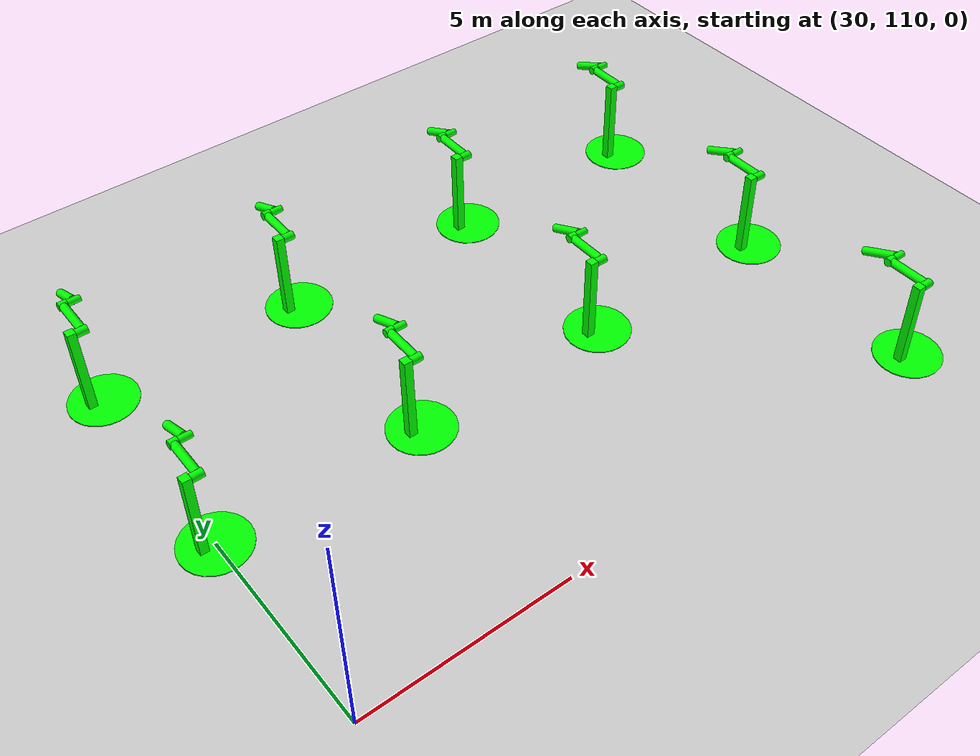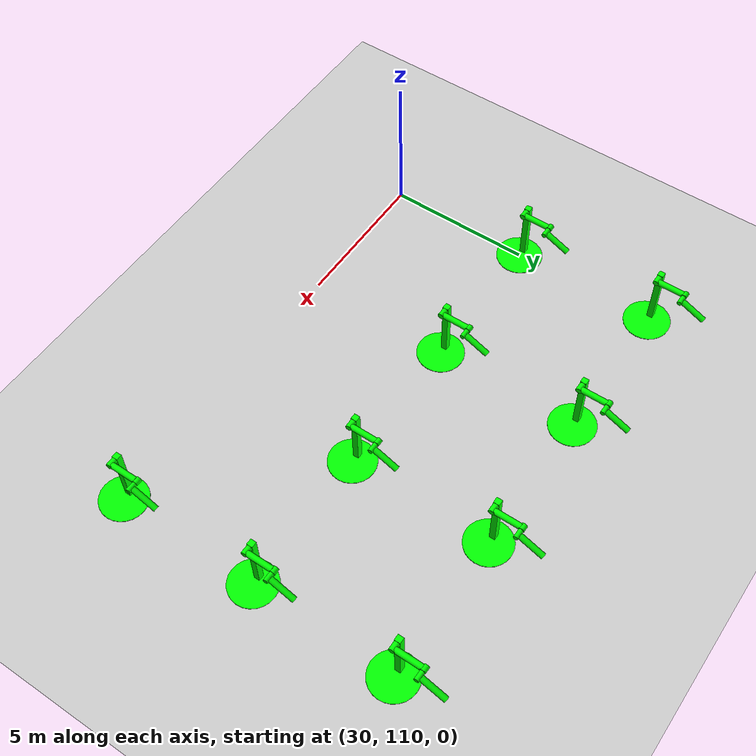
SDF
<sdf version="1.6">
 <world name="double_pendulums">
  <model name="ground_plane">
   <static>true</static>
   <link name="link">
    <collision name="collision">
     <geometry><plane><normal>0 0 1</normal><size>100 100</size></plane></geometry>
    </collision>
    <visual name="visual">
     <geometry><plane><normal>0 0 1</normal><size>100 100</size></plane></geometry>
     <material>
      <ambient>0.8 0.8 0.8 1</ambient>
      <diffuse>0.8 0.8 0.8 1</diffuse>
      <specular>0.8 0.8 0.8 1</specular>
     </material>
    </visual>
   </link>
  </model>
  <model name="dbl_pendulum_569">
   <pose>45 110 0 0 0 0</pose>
   <link name="base">
    <inertial><mass>100</mass></inertial>
    <visual name="vis_plate_on_ground">
     <pose>0 0 0.01 0 0 0</pose>
     <geometry><cylinder><radius>0.8</radius><length>0.02</length></cylinder></geometry>
     <material><ambient>0 1 0 1</ambient><diffuse>0 1 0 1</diffuse><specular>0 1 0 1</specular></material>
    </visual>
    <visual name="vis_pole">
     <pose>-0.275 0 1.1 0 0 0</pose>
     <geometry><box><size>0.2 0.2 2.2</size></box></geometry>
     <material><ambient>0 1 0 1</ambient><diffuse>0 1 0 1</diffuse><specular>0 1 0 1</specular></material>
    </visual>
    <collision name="col_plate_on_ground">
     <pose>0 0 0.01 0 0 0</pose>
     <geometry><cylinder><radius>0.8</radius><length>0.02</length></cylinder></geometry>
    </collision>
    <collision name="col_pole">
     <pose>-0.275 0 1.1 0 0 0</pose>
     <geometry><box><size>0.2 0.2 2.2</size></box></geometry>
    </collision>
   </link>
   <link name="upper_link">
    <pose>0 0 2.1 -1.5708 0 0</pose>
    <inertial><pose>0 0 0.5 0 0 0</pose></inertial>
    <visual name="vis_upper_joint">
     <pose>-0.05 0 0 0 1.5708 0</pose>
     <geometry><cylinder><radius>0.1</radius><length>0.3</length></cylinder></geometry>
     <material><ambient>0 1 0 1</ambient><diffuse>0 1 0 1</diffuse><specular>0 1 0 1</specular></material>
    </visual>
    <visual name="vis_lower_joint">
     <pose>0 0 1.0 0 1.5708 0</pose>
     <geometry><cylinder><radius>0.1</radius><length>0.2</length></cylinder></geometry>
     <material><ambient>0 1 0 1</ambient><diffuse>0 1 0 1</diffuse><specular>0 1 0 1</specular></material>
    </visual>
    <visual name="vis_cylinder">
     <pose>0 0 0.5 0 0 0</pose>
     <geometry><cylinder><radius>0.1</radius><length>0.9</length></cylinder></geometry>
     <material><ambient>0 1 0 1</ambient><diffuse>0 1 0 1</diffuse><specular>0 1 0 1</specular></material>
    </visual>
    <collision name="col_upper_joint">
     <pose>-0.05 0 0 0 1.5708 0</pose>
     <geometry><cylinder><radius>0.1</radius><length>0.3</length></cylinder></geometry>
    </collision>
    <collision name="col_lower_joint">
     <pose>0 0 1.0 0 1.5708 0</pose>
     <geometry><cylinder><radius>0.1</radius><length>0.2</length></cylinder></geometry>
    </collision>
    <collision name="col_cylinder">
     <pose>0 0 0.5 0 0 0</pose>
     <geometry><cylinder><radius>0.1</radius><length>0.9</length></cylinder></geometry>
    </collision>
   </link>
   <link name="lower_link">
    <pose>0.25 1.0 2.1 -2 0 0</pose>
    <inertial><pose>0 0 0.5 0 0 0</pose></inertial>
    <visual name="vis_lower_joint">
     <pose>0 0 0 0 1.5708 0</pose>
     <geometry><cylinder><radius>0.08</radius><length>0.3</length></cylinder></geometry>
     <material><ambient>0 1 0 1</ambient><diffuse>0 1 0 1</diffuse><specular>0 1 0 1</specular></material>
    </visual>
    <visual name="vis_cylinder">
     <pose>0 0 0.5 0 0 0</pose>
     <geometry><cylinder><radius>0.1</radius><length>0.9</length></cylinder></geometry>
     <material><ambient>0 1 0 1</ambient><diffuse>0 1 0 1</diffuse><specular>0 1 0 1</specular></material>
    </visual>
    <collision name="col_lower_joint">
     <pose>0 0 0 0 1.5708 0</pose>
     <geometry><cylinder><radius>0.08</radius><length>0.3</length></cylinder></geometry>
    </collision>
    <collision name="col_cylinder">
     <pose>0 0 0.5 0 0 0</pose>
     <geometry><cylinder><radius>0.1</radius><length>0.9</length></cylinder></geometry>
    </collision>
   </link>
   <joint name="upper_joint" type="revolute">
    <parent>base</parent>
    <child>upper_link</child>
    <axis><xyz>1.0 0 0</xyz></axis>
   </joint>
   <joint name="lower_joint" type="revolute">
    <parent>upper_link</parent>
    <child>lower_link</child>
    <axis><xyz>1.0 0 0</xyz></axis>
   </joint>
  </model>
  <model name="dbl_pendulum_591">
   <pose>30 115 0 0 0 0</pose>
   <link name="base">
    <inertial><mass>100</mass></inertial>
    <visual name="vis_plate_on_ground">
     <pose>0 0 0.01 0 0 0</pose>
     <geometry><cylinder><radius>0.8</radius><length>0.02</length></cylinder></geometry>
     <material><ambient>0 1 0 1</ambient><diffuse>0 1 0 1</diffuse><specular>0 1 0 1</specular></material>
    </visual>
    <visual name="vis_pole">
     <pose>-0.275 0 1.1 0 0 0</pose>
     <geometry><box><size>0.2 0.2 2.2</size></box></geometry>
     <material><ambient>0 1 0 1</ambient><diffuse>0 1 0 1</diffuse><specular>0 1 0 1</specular></material>
    </visual>
    <collision name="col_plate_on_ground">
     <pose>0 0 0.01 0 0 0</pose>
     <geometry><cylinder><radius>0.8</radius><length>0.02</length></cylinder></geometry>
    </collision>
    <collision name="col_pole">
     <pose>-0.275 0 1.1 0 0 0</pose>
     <geometry><box><size>0.2 0.2 2.2</size></box></geometry>
    </collision>
   </link>
   <link name="upper_link">
    <pose>0 0 2.1 -1.5708 0 0</pose>
    <inertial><pose>0 0 0.5 0 0 0</pose></inertial>
    <visual name="vis_upper_joint">
     <pose>-0.05 0 0 0 1.5708 0</pose>
     <geometry><cylinder><radius>0.1</radius><length>0.3</length></cylinder></geometry>
     <material><ambient>0 1 0 1</ambient><diffuse>0 1 0 1</diffuse><specular>0 1 0 1</specular></material>
    </visual>
    <visual name="vis_lower_joint">
     <pose>0 0 1.0 0 1.5708 0</pose>
     <geometry><cylinder><radius>0.1</radius><length>0.2</length></cylinder></geometry>
     <material><ambient>0 1 0 1</ambient><diffuse>0 1 0 1</diffuse><specular>0 1 0 1</specular></material>
    </visual>
    <visual name="vis_cylinder">
     <pose>0 0 0.5 0 0 0</pose>
     <geometry><cylinder><radius>0.1</radius><length>0.9</length></cylinder></geometry>
     <material><ambient>0 1 0 1</ambient><diffuse>0 1 0 1</diffuse><specular>0 1 0 1</specular></material>
    </visual>
    <collision name="col_upper_joint">
     <pose>-0.05 0 0 0 1.5708 0</pose>
     <geometry><cylinder><radius>0.1</radius><length>0.3</length></cylinder></geometry>
    </collision>
    <collision name="col_lower_joint">
     <pose>0 0 1.0 0 1.5708 0</pose>
     <geometry><cylinder><radius>0.1</radius><length>0.2</length></cylinder></geometry>
    </collision>
    <collision name="col_cylinder">
     <pose>0 0 0.5 0 0 0</pose>
     <geometry><cylinder><radius>0.1</radius><length>0.9</length></cylinder></geometry>
    </collision>
   </link>
   <link name="lower_link">
    <pose>0.25 1.0 2.1 -2 0 0</pose>
    <inertial><pose>0 0 0.5 0 0 0</pose></inertial>
    <visual name="vis_lower_joint">
     <pose>0 0 0 0 1.5708 0</pose>
     <geometry><cylinder><radius>0.08</radius><length>0.3</length></cylinder></geometry>
     <material><ambient>0 1 0 1</ambient><diffuse>0 1 0 1</diffuse><specular>0 1 0 1</specular></material>
    </visual>
    <visual name="vis_cylinder">
     <pose>0 0 0.5 0 0 0</pose>
     <geometry><cylinder><radius>0.1</radius><length>0.9</length></cylinder></geometry>
     <material><ambient>0 1 0 1</ambient><diffuse>0 1 0 1</diffuse><specular>0 1 0 1</specular></material>
    </visual>
    <collision name="col_lower_joint">
     <pose>0 0 0 0 1.5708 0</pose>
     <geometry><cylinder><radius>0.08</radius><length>0.3</length></cylinder></geometry>
    </collision>
    <collision name="col_cylinder">
     <pose>0 0 0.5 0 0 0</pose>
     <geometry><cylinder><radius>0.1</radius><length>0.9</length></cylinder></geometry>
    </collision>
   </link>
   <joint name="upper_joint" type="revolute">
    <parent>base</parent>
    <child>upper_link</child>
    <axis><xyz>1.0 0 0</xyz></axis>
   </joint>
   <joint name="lower_joint" type="revolute">
    <parent>upper_link</parent>
    <child>lower_link</child>
    <axis><xyz>1.0 0 0</xyz></axis>
   </joint>
  </model>
  <model name="dbl_pendulum_592">
   <pose>35 115 0 0 0 0</pose>
   <link name="base">
    <inertial><mass>100</mass></inertial>
    <visual name="vis_plate_on_ground">
     <pose>0 0 0.01 0 0 0</pose>
     <geometry><cylinder><radius>0.8</radius><length>0.02</length></cylinder></geometry>
     <material><ambient>0 1 0 1</ambient><diffuse>0 1 0 1</diffuse><specular>0 1 0 1</specular></material>
    </visual>
    <visual name="vis_pole">
     <pose>-0.275 0 1.1 0 0 0</pose>
     <geometry><box><size>0.2 0.2 2.2</size></box></geometry>
     <material><ambient>0 1 0 1</ambient><diffuse>0 1 0 1</diffuse><specular>0 1 0 1</specular></material>
    </visual>
    <collision name="col_plate_on_ground">
     <pose>0 0 0.01 0 0 0</pose>
     <geometry><cylinder><radius>0.8</radius><length>0.02</length></cylinder></geometry>
    </collision>
    <collision name="col_pole">
     <pose>-0.275 0 1.1 0 0 0</pose>
     <geometry><box><size>0.2 0.2 2.2</size></box></geometry>
    </collision>
   </link>
   <link name="upper_link">
    <pose>0 0 2.1 -1.5708 0 0</pose>
    <inertial><pose>0 0 0.5 0 0 0</pose></inertial>
    <visual name="vis_upper_joint">
     <pose>-0.05 0 0 0 1.5708 0</pose>
     <geometry><cylinder><radius>0.1</radius><length>0.3</length></cylinder></geometry>
     <material><ambient>0 1 0 1</ambient><diffuse>0 1 0 1</diffuse><specular>0 1 0 1</specular></material>
    </visual>
    <visual name="vis_lower_joint">
     <pose>0 0 1.0 0 1.5708 0</pose>
     <geometry><cylinder><radius>0.1</radius><length>0.2</length></cylinder></geometry>
     <material><ambient>0 1 0 1</ambient><diffuse>0 1 0 1</diffuse><specular>0 1 0 1</specular></material>
    </visual>
    <visual name="vis_cylinder">
     <pose>0 0 0.5 0 0 0</pose>
     <geometry><cylinder><radius>0.1</radius><length>0.9</length></cylinder></geometry>
     <material><ambient>0 1 0 1</ambient><diffuse>0 1 0 1</diffuse><specular>0 1 0 1</specular></material>
    </visual>
    <collision name="col_upper_joint">
     <pose>-0.05 0 0 0 1.5708 0</pose>
     <geometry><cylinder><radius>0.1</radius><length>0.3</length></cylinder></geometry>
    </collision>
    <collision name="col_lower_joint">
     <pose>0 0 1.0 0 1.5708 0</pose>
     <geometry><cylinder><radius>0.1</radius><length>0.2</length></cylinder></geometry>
    </collision>
    <collision name="col_cylinder">
     <pose>0 0 0.5 0 0 0</pose>
     <geometry><cylinder><radius>0.1</radius><length>0.9</length></cylinder></geometry>
    </collision>
   </link>
   <link name="lower_link">
    <pose>0.25 1.0 2.1 -2 0 0</pose>
    <inertial><pose>0 0 0.5 0 0 0</pose></inertial>
    <visual name="vis_lower_joint">
     <pose>0 0 0 0 1.5708 0</pose>
     <geometry><cylinder><radius>0.08</radius><length>0.3</length></cylinder></geometry>
     <material><ambient>0 1 0 1</ambient><diffuse>0 1 0 1</diffuse><specular>0 1 0 1</specular></material>
    </visual>
    <visual name="vis_cylinder">
     <pose>0 0 0.5 0 0 0</pose>
     <geometry><cylinder><radius>0.1</radius><length>0.9</length></cylinder></geometry>
     <material><ambient>0 1 0 1</ambient><diffuse>0 1 0 1</diffuse><specular>0 1 0 1</specular></material>
    </visual>
    <collision name="col_lower_joint">
     <pose>0 0 0 0 1.5708 0</pose>
     <geometry><cylinder><radius>0.08</radius><length>0.3</length></cylinder></geometry>
    </collision>
    <collision name="col_cylinder">
     <pose>0 0 0.5 0 0 0</pose>
     <geometry><cylinder><radius>0.1</radius><length>0.9</length></cylinder></geometry>
    </collision>
   </link>
   <joint name="upper_joint" type="revolute">
    <parent>base</parent>
    <child>upper_link</child>
    <axis><xyz>1.0 0 0</xyz></axis>
   </joint>
   <joint name="lower_joint" type="revolute">
    <parent>upper_link</parent>
    <child>lower_link</child>
    <axis><xyz>1.0 0 0</xyz></axis>
   </joint>
  </model>
  <model name="dbl_pendulum_593">
   <pose>40 115 0 0 0 0</pose>
   <link name="base">
    <inertial><mass>100</mass></inertial>
    <visual name="vis_plate_on_ground">
     <pose>0 0 0.01 0 0 0</pose>
     <geometry><cylinder><radius>0.8</radius><length>0.02</length></cylinder></geometry>
     <material><ambient>0 1 0 1</ambient><diffuse>0 1 0 1</diffuse><specular>0 1 0 1</specular></material>
    </visual>
    <visual name="vis_pole">
     <pose>-0.275 0 1.1 0 0 0</pose>
     <geometry><box><size>0.2 0.2 2.2</size></box></geometry>
     <material><ambient>0 1 0 1</ambient><diffuse>0 1 0 1</diffuse><specular>0 1 0 1</specular></material>
    </visual>
    <collision name="col_plate_on_ground">
     <pose>0 0 0.01 0 0 0</pose>
     <geometry><cylinder><radius>0.8</radius><length>0.02</length></cylinder></geometry>
    </collision>
    <collision name="col_pole">
     <pose>-0.275 0 1.1 0 0 0</pose>
     <geometry><box><size>0.2 0.2 2.2</size></box></geometry>
    </collision>
   </link>
   <link name="upper_link">
    <pose>0 0 2.1 -1.5708 0 0</pose>
    <inertial><pose>0 0 0.5 0 0 0</pose></inertial>
    <visual name="vis_upper_joint">
     <pose>-0.05 0 0 0 1.5708 0</pose>
     <geometry><cylinder><radius>0.1</radius><length>0.3</length></cylinder></geometry>
     <material><ambient>0 1 0 1</ambient><diffuse>0 1 0 1</diffuse><specular>0 1 0 1</specular></material>
    </visual>
    <visual name="vis_lower_joint">
     <pose>0 0 1.0 0 1.5708 0</pose>
     <geometry><cylinder><radius>0.1</radius><length>0.2</length></cylinder></geometry>
     <material><ambient>0 1 0 1</ambient><diffuse>0 1 0 1</diffuse><specular>0 1 0 1</specular></material>
    </visual>
    <visual name="vis_cylinder">
     <pose>0 0 0.5 0 0 0</pose>
     <geometry><cylinder><radius>0.1</radius><length>0.9</length></cylinder></geometry>
     <material><ambient>0 1 0 1</ambient><diffuse>0 1 0 1</diffuse><specular>0 1 0 1</specular></material>
    </visual>
    <collision name="col_upper_joint">
     <pose>-0.05 0 0 0 1.5708 0</pose>
     <geometry><cylinder><radius>0.1</radius><length>0.3</length></cylinder></geometry>
    </collision>
    <collision name="col_lower_joint">
     <pose>0 0 1.0 0 1.5708 0</pose>
     <geometry><cylinder><radius>0.1</radius><length>0.2</length></cylinder></geometry>
    </collision>
    <collision name="col_cylinder">
     <pose>0 0 0.5 0 0 0</pose>
     <geometry><cylinder><radius>0.1</radius><length>0.9</length></cylinder></geometry>
    </collision>
   </link>
   <link name="lower_link">
    <pose>0.25 1.0 2.1 -2 0 0</pose>
    <inertial><pose>0 0 0.5 0 0 0</pose></inertial>
    <visual name="vis_lower_joint">
     <pose>0 0 0 0 1.5708 0</pose>
     <geometry><cylinder><radius>0.08</radius><length>0.3</length></cylinder></geometry>
     <material><ambient>0 1 0 1</ambient><diffuse>0 1 0 1</diffuse><specular>0 1 0 1</specular></material>
    </visual>
    <visual name="vis_cylinder">
     <pose>0 0 0.5 0 0 0</pose>
     <geometry><cylinder><radius>0.1</radius><length>0.9</length></cylinder></geometry>
     <material><ambient>0 1 0 1</ambient><diffuse>0 1 0 1</diffuse><specular>0 1 0 1</specular></material>
    </visual>
    <collision name="col_lower_joint">
     <pose>0 0 0 0 1.5708 0</pose>
     <geometry><cylinder><radius>0.08</radius><length>0.3</length></cylinder></geometry>
    </collision>
    <collision name="col_cylinder">
     <pose>0 0 0.5 0 0 0</pose>
     <geometry><cylinder><radius>0.1</radius><length>0.9</length></cylinder></geometry>
    </collision>
   </link>
   <joint name="upper_joint" type="revolute">
    <parent>base</parent>
    <child>upper_link</child>
    <axis><xyz>1.0 0 0</xyz></axis>
   </joint>
   <joint name="lower_joint" type="revolute">
    <parent>upper_link</parent>
    <child>lower_link</child>
    <axis><xyz>1.0 0 0</xyz></axis>
   </joint>
  </model>
  <model name="dbl_pendulum_594">
   <pose>45 115 0 0 0 0</pose>
   <link name="base">
    <inertial><mass>100</mass></inertial>
    <visual name="vis_plate_on_ground">
     <pose>0 0 0.01 0 0 0</pose>
     <geometry><cylinder><radius>0.8</radius><length>0.02</length></cylinder></geometry>
     <material><ambient>0 1 0 1</ambient><diffuse>0 1 0 1</diffuse><specular>0 1 0 1</specular></material>
    </visual>
    <visual name="vis_pole">
     <pose>-0.275 0 1.1 0 0 0</pose>
     <geometry><box><size>0.2 0.2 2.2</size></box></geometry>
     <material><ambient>0 1 0 1</ambient><diffuse>0 1 0 1</diffuse><specular>0 1 0 1</specular></material>
    </visual>
    <collision name="col_plate_on_ground">
     <pose>0 0 0.01 0 0 0</pose>
     <geometry><cylinder><radius>0.8</radius><length>0.02</length></cylinder></geometry>
    </collision>
    <collision name="col_pole">
     <pose>-0.275 0 1.1 0 0 0</pose>
     <geometry><box><size>0.2 0.2 2.2</size></box></geometry>
    </collision>
   </link>
   <link name="upper_link">
    <pose>0 0 2.1 -1.5708 0 0</pose>
    <inertial><pose>0 0 0.5 0 0 0</pose></inertial>
    <visual name="vis_upper_joint">
     <pose>-0.05 0 0 0 1.5708 0</pose>
     <geometry><cylinder><radius>0.1</radius><length>0.3</length></cylinder></geometry>
     <material><ambient>0 1 0 1</ambient><diffuse>0 1 0 1</diffuse><specular>0 1 0 1</specular></material>
    </visual>
    <visual name="vis_lower_joint">
     <pose>0 0 1.0 0 1.5708 0</pose>
     <geometry><cylinder><radius>0.1</radius><length>0.2</length></cylinder></geometry>
     <material><ambient>0 1 0 1</ambient><diffuse>0 1 0 1</diffuse><specular>0 1 0 1</specular></material>
    </visual>
    <visual name="vis_cylinder">
     <pose>0 0 0.5 0 0 0</pose>
     <geometry><cylinder><radius>0.1</radius><length>0.9</length></cylinder></geometry>
     <material><ambient>0 1 0 1</ambient><diffuse>0 1 0 1</diffuse><specular>0 1 0 1</specular></material>
    </visual>
    <collision name="col_upper_joint">
     <pose>-0.05 0 0 0 1.5708 0</pose>
     <geometry><cylinder><radius>0.1</radius><length>0.3</length></cylinder></geometry>
    </collision>
    <collision name="col_lower_joint">
     <pose>0 0 1.0 0 1.5708 0</pose>
     <geometry><cylinder><radius>0.1</radius><length>0.2</length></cylinder></geometry>
    </collision>
    <collision name="col_cylinder">
     <pose>0 0 0.5 0 0 0</pose>
     <geometry><cylinder><radius>0.1</radius><length>0.9</length></cylinder></geometry>
    </collision>
   </link>
   <link name="lower_link">
    <pose>0.25 1.0 2.1 -2 0 0</pose>
    <inertial><pose>0 0 0.5 0 0 0</pose></inertial>
    <visual name="vis_lower_joint">
     <pose>0 0 0 0 1.5708 0</pose>
     <geometry><cylinder><radius>0.08</radius><length>0.3</length></cylinder></geometry>
     <material><ambient>0 1 0 1</ambient><diffuse>0 1 0 1</diffuse><specular>0 1 0 1</specular></material>
    </visual>
    <visual name="vis_cylinder">
     <pose>0 0 0.5 0 0 0</pose>
     <geometry><cylinder><radius>0.1</radius><length>0.9</length></cylinder></geometry>
     <material><ambient>0 1 0 1</ambient><diffuse>0 1 0 1</diffuse><specular>0 1 0 1</specular></material>
    </visual>
    <collision name="col_lower_joint">
     <pose>0 0 0 0 1.5708 0</pose>
     <geometry><cylinder><radius>0.08</radius><length>0.3</length></cylinder></geometry>
    </collision>
    <collision name="col_cylinder">
     <pose>0 0 0.5 0 0 0</pose>
     <geometry><cylinder><radius>0.1</radius><length>0.9</length></cylinder></geometry>
    </collision>
   </link>
   <joint name="upper_joint" type="revolute">
    <parent>base</parent>
    <child>upper_link</child>
    <axis><xyz>1.0 0 0</xyz></axis>
   </joint>
   <joint name="lower_joint" type="revolute">
    <parent>upper_link</parent>
    <child>lower_link</child>
    <axis><xyz>1.0 0 0</xyz></axis>
   </joint>
  </model>
  <model name="dbl_pendulum_616">
   <pose>30 120 0 0 0 0</pose>
   <link name="base">
    <inertial><mass>100</mass></inertial>
    <visual name="vis_plate_on_ground">
     <pose>0 0 0.01 0 0 0</pose>
     <geometry><cylinder><radius>0.8</radius><length>0.02</length></cylinder></geometry>
     <material><ambient>0 1 0 1</ambient><diffuse>0 1 0 1</diffuse><specular>0 1 0 1</specular></material>
    </visual>
    <visual name="vis_pole">
     <pose>-0.275 0 1.1 0 0 0</pose>
     <geometry><box><size>0.2 0.2 2.2</size></box></geometry>
     <material><ambient>0 1 0 1</ambient><diffuse>0 1 0 1</diffuse><specular>0 1 0 1</specular></material>
    </visual>
    <collision name="col_plate_on_ground">
     <pose>0 0 0.01 0 0 0</pose>
     <geometry><cylinder><radius>0.8</radius><length>0.02</length></cylinder></geometry>
    </collision>
    <collision name="col_pole">
     <pose>-0.275 0 1.1 0 0 0</pose>
     <geometry><box><size>0.2 0.2 2.2</size></box></geometry>
    </collision>
   </link>
   <link name="upper_link">
    <pose>0 0 2.1 -1.5708 0 0</pose>
    <inertial><pose>0 0 0.5 0 0 0</pose></inertial>
    <visual name="vis_upper_joint">
     <pose>-0.05 0 0 0 1.5708 0</pose>
     <geometry><cylinder><radius>0.1</radius><length>0.3</length></cylinder></geometry>
     <material><ambient>0 1 0 1</ambient><diffuse>0 1 0 1</diffuse><specular>0 1 0 1</specular></material>
    </visual>
    <visual name="vis_lower_joint">
     <pose>0 0 1.0 0 1.5708 0</pose>
     <geometry><cylinder><radius>0.1</radius><length>0.2</length></cylinder></geometry>
     <material><ambient>0 1 0 1</ambient><diffuse>0 1 0 1</diffuse><specular>0 1 0 1</specular></material>
    </visual>
    <visual name="vis_cylinder">
     <pose>0 0 0.5 0 0 0</pose>
     <geometry><cylinder><radius>0.1</radius><length>0.9</length></cylinder></geometry>
     <material><ambient>0 1 0 1</ambient><diffuse>0 1 0 1</diffuse><specular>0 1 0 1</specular></material>
    </visual>
    <collision name="col_upper_joint">
     <pose>-0.05 0 0 0 1.5708 0</pose>
     <geometry><cylinder><radius>0.1</radius><length>0.3</length></cylinder></geometry>
    </collision>
    <collision name="col_lower_joint">
     <pose>0 0 1.0 0 1.5708 0</pose>
     <geometry><cylinder><radius>0.1</radius><length>0.2</length></cylinder></geometry>
    </collision>
    <collision name="col_cylinder">
     <pose>0 0 0.5 0 0 0</pose>
     <geometry><cylinder><radius>0.1</radius><length>0.9</length></cylinder></geometry>
    </collision>
   </link>
   <link name="lower_link">
    <pose>0.25 1.0 2.1 -2 0 0</pose>
    <inertial><pose>0 0 0.5 0 0 0</pose></inertial>
    <visual name="vis_lower_joint">
     <pose>0 0 0 0 1.5708 0</pose>
     <geometry><cylinder><radius>0.08</radius><length>0.3</length></cylinder></geometry>
     <material><ambient>0 1 0 1</ambient><diffuse>0 1 0 1</diffuse><specular>0 1 0 1</specular></material>
    </visual>
    <visual name="vis_cylinder">
     <pose>0 0 0.5 0 0 0</pose>
     <geometry><cylinder><radius>0.1</radius><length>0.9</length></cylinder></geometry>
     <material><ambient>0 1 0 1</ambient><diffuse>0 1 0 1</diffuse><specular>0 1 0 1</specular></material>
    </visual>
    <collision name="col_lower_joint">
     <pose>0 0 0 0 1.5708 0</pose>
     <geometry><cylinder><radius>0.08</radius><length>0.3</length></cylinder></geometry>
    </collision>
    <collision name="col_cylinder">
     <pose>0 0 0.5 0 0 0</pose>
     <geometry><cylinder><radius>0.1</radius><length>0.9</length></cylinder></geometry>
    </collision>
   </link>
   <joint name="upper_joint" type="revolute">
    <parent>base</parent>
    <child>upper_link</child>
    <axis><xyz>1.0 0 0</xyz></axis>
   </joint>
   <joint name="lower_joint" type="revolute">
    <parent>upper_link</parent>
    <child>lower_link</child>
    <axis><xyz>1.0 0 0</xyz></axis>
   </joint>
  </model>
  <model name="dbl_pendulum_617">
   <pose>35 120 0 0 0 0</pose>
   <link name="base">
    <inertial><mass>100</mass></inertial>
    <visual name="vis_plate_on_ground">
     <pose>0 0 0.01 0 0 0</pose>
     <geometry><cylinder><radius>0.8</radius><length>0.02</length></cylinder></geometry>
     <material><ambient>0 1 0 1</ambient><diffuse>0 1 0 1</diffuse><specular>0 1 0 1</specular></material>
    </visual>
    <visual name="vis_pole">
     <pose>-0.275 0 1.1 0 0 0</pose>
     <geometry><box><size>0.2 0.2 2.2</size></box></geometry>
     <material><ambient>0 1 0 1</ambient><diffuse>0 1 0 1</diffuse><specular>0 1 0 1</specular></material>
    </visual>
    <collision name="col_plate_on_ground">
     <pose>0 0 0.01 0 0 0</pose>
     <geometry><cylinder><radius>0.8</radius><length>0.02</length></cylinder></geometry>
    </collision>
    <collision name="col_pole">
     <pose>-0.275 0 1.1 0 0 0</pose>
     <geometry><box><size>0.2 0.2 2.2</size></box></geometry>
    </collision>
   </link>
   <link name="upper_link">
    <pose>0 0 2.1 -1.5708 0 0</pose>
    <inertial><pose>0 0 0.5 0 0 0</pose></inertial>
    <visual name="vis_upper_joint">
     <pose>-0.05 0 0 0 1.5708 0</pose>
     <geometry><cylinder><radius>0.1</radius><length>0.3</length></cylinder></geometry>
     <material><ambient>0 1 0 1</ambient><diffuse>0 1 0 1</diffuse><specular>0 1 0 1</specular></material>
    </visual>
    <visual name="vis_lower_joint">
     <pose>0 0 1.0 0 1.5708 0</pose>
     <geometry><cylinder><radius>0.1</radius><length>0.2</length></cylinder></geometry>
     <material><ambient>0 1 0 1</ambient><diffuse>0 1 0 1</diffuse><specular>0 1 0 1</specular></material>
    </visual>
    <visual name="vis_cylinder">
     <pose>0 0 0.5 0 0 0</pose>
     <geometry><cylinder><radius>0.1</radius><length>0.9</length></cylinder></geometry>
     <material><ambient>0 1 0 1</ambient><diffuse>0 1 0 1</diffuse><specular>0 1 0 1</specular></material>
    </visual>
    <collision name="col_upper_joint">
     <pose>-0.05 0 0 0 1.5708 0</pose>
     <geometry><cylinder><radius>0.1</radius><length>0.3</length></cylinder></geometry>
    </collision>
    <collision name="col_lower_joint">
     <pose>0 0 1.0 0 1.5708 0</pose>
     <geometry><cylinder><radius>0.1</radius><length>0.2</length></cylinder></geometry>
    </collision>
    <collision name="col_cylinder">
     <pose>0 0 0.5 0 0 0</pose>
     <geometry><cylinder><radius>0.1</radius><length>0.9</length></cylinder></geometry>
    </collision>
   </link>
   <link name="lower_link">
    <pose>0.25 1.0 2.1 -2 0 0</pose>
    <inertial><pose>0 0 0.5 0 0 0</pose></inertial>
    <visual name="vis_lower_joint">
     <pose>0 0 0 0 1.5708 0</pose>
     <geometry><cylinder><radius>0.08</radius><length>0.3</length></cylinder></geometry>
     <material><ambient>0 1 0 1</ambient><diffuse>0 1 0 1</diffuse><specular>0 1 0 1</specular></material>
    </visual>
    <visual name="vis_cylinder">
     <pose>0 0 0.5 0 0 0</pose>
     <geometry><cylinder><radius>0.1</radius><length>0.9</length></cylinder></geometry>
     <material><ambient>0 1 0 1</ambient><diffuse>0 1 0 1</diffuse><specular>0 1 0 1</specular></material>
    </visual>
    <collision name="col_lower_joint">
     <pose>0 0 0 0 1.5708 0</pose>
     <geometry><cylinder><radius>0.08</radius><length>0.3</length></cylinder></geometry>
    </collision>
    <collision name="col_cylinder">
     <pose>0 0 0.5 0 0 0</pose>
     <geometry><cylinder><radius>0.1</radius><length>0.9</length></cylinder></geometry>
    </collision>
   </link>
   <joint name="upper_joint" type="revolute">
    <parent>base</parent>
    <child>upper_link</child>
    <axis><xyz>1.0 0 0</xyz></axis>
   </joint>
   <joint name="lower_joint" type="revolute">
    <parent>upper_link</parent>
    <child>lower_link</child>
    <axis><xyz>1.0 0 0</xyz></axis>
   </joint>
  </model>
  <model name="dbl_pendulum_618">
   <pose>40 120 0 0 0 0</pose>
   <link name="base">
    <inertial><mass>100</mass></inertial>
    <visual name="vis_plate_on_ground">
     <pose>0 0 0.01 0 0 0</pose>
     <geometry><cylinder><radius>0.8</radius><length>0.02</length></cylinder></geometry>
     <material><ambient>0 1 0 1</ambient><diffuse>0 1 0 1</diffuse><specular>0 1 0 1</specular></material>
    </visual>
    <visual name="vis_pole">
     <pose>-0.275 0 1.1 0 0 0</pose>
     <geometry><box><size>0.2 0.2 2.2</size></box></geometry>
     <material><ambient>0 1 0 1</ambient><diffuse>0 1 0 1</diffuse><specular>0 1 0 1</specular></material>
    </visual>
    <collision name="col_plate_on_ground">
     <pose>0 0 0.01 0 0 0</pose>
     <geometry><cylinder><radius>0.8</radius><length>0.02</length></cylinder></geometry>
    </collision>
    <collision name="col_pole">
     <pose>-0.275 0 1.1 0 0 0</pose>
     <geometry><box><size>0.2 0.2 2.2</size></box></geometry>
    </collision>
   </link>
   <link name="upper_link">
    <pose>0 0 2.1 -1.5708 0 0</pose>
    <inertial><pose>0 0 0.5 0 0 0</pose></inertial>
    <visual name="vis_upper_joint">
     <pose>-0.05 0 0 0 1.5708 0</pose>
     <geometry><cylinder><radius>0.1</radius><length>0.3</length></cylinder></geometry>
     <material><ambient>0 1 0 1</ambient><diffuse>0 1 0 1</diffuse><specular>0 1 0 1</specular></material>
    </visual>
    <visual name="vis_lower_joint">
     <pose>0 0 1.0 0 1.5708 0</pose>
     <geometry><cylinder><radius>0.1</radius><length>0.2</length></cylinder></geometry>
     <material><ambient>0 1 0 1</ambient><diffuse>0 1 0 1</diffuse><specular>0 1 0 1</specular></material>
    </visual>
    <visual name="vis_cylinder">
     <pose>0 0 0.5 0 0 0</pose>
     <geometry><cylinder><radius>0.1</radius><length>0.9</length></cylinder></geometry>
     <material><ambient>0 1 0 1</ambient><diffuse>0 1 0 1</diffuse><specular>0 1 0 1</specular></material>
    </visual>
    <collision name="col_upper_joint">
     <pose>-0.05 0 0 0 1.5708 0</pose>
     <geometry><cylinder><radius>0.1</radius><length>0.3</length></cylinder></geometry>
    </collision>
    <collision name="col_lower_joint">
     <pose>0 0 1.0 0 1.5708 0</pose>
     <geometry><cylinder><radius>0.1</radius><length>0.2</length></cylinder></geometry>
    </collision>
    <collision name="col_cylinder">
     <pose>0 0 0.5 0 0 0</pose>
     <geometry><cylinder><radius>0.1</radius><length>0.9</length></cylinder></geometry>
    </collision>
   </link>
   <link name="lower_link">
    <pose>0.25 1.0 2.1 -2 0 0</pose>
    <inertial><pose>0 0 0.5 0 0 0</pose></inertial>
    <visual name="vis_lower_joint">
     <pose>0 0 0 0 1.5708 0</pose>
     <geometry><cylinder><radius>0.08</radius><length>0.3</length></cylinder></geometry>
     <material><ambient>0 1 0 1</ambient><diffuse>0 1 0 1</diffuse><specular>0 1 0 1</specular></material>
    </visual>
    <visual name="vis_cylinder">
     <pose>0 0 0.5 0 0 0</pose>
     <geometry><cylinder><radius>0.1</radius><length>0.9</length></cylinder></geometry>
     <material><ambient>0 1 0 1</ambient><diffuse>0 1 0 1</diffuse><specular>0 1 0 1</specular></material>
    </visual>
    <collision name="col_lower_joint">
     <pose>0 0 0 0 1.5708 0</pose>
     <geometry><cylinder><radius>0.08</radius><length>0.3</length></cylinder></geometry>
    </collision>
    <collision name="col_cylinder">
     <pose>0 0 0.5 0 0 0</pose>
     <geometry><cylinder><radius>0.1</radius><length>0.9</length></cylinder></geometry>
    </collision>
   </link>
   <joint name="upper_joint" type="revolute">
    <parent>base</parent>
    <child>upper_link</child>
    <axis><xyz>1.0 0 0</xyz></axis>
   </joint>
   <joint name="lower_joint" type="revolute">
    <parent>upper_link</parent>
    <child>lower_link</child>
    <axis><xyz>1.0 0 0</xyz></axis>
   </joint>
  </model>
  <model name="dbl_pendulum_619">
   <pose>45 120 0 0 0 0</pose>
   <link name="base">
    <inertial><mass>100</mass></inertial>
    <visual name="vis_plate_on_ground">
     <pose>0 0 0.01 0 0 0</pose>
     <geometry><cylinder><radius>0.8</radius><length>0.02</length></cylinder></geometry>
     <material><ambient>0 1 0 1</ambient><diffuse>0 1 0 1</diffuse><specular>0 1 0 1</specular></material>
    </visual>
    <visual name="vis_pole">
     <pose>-0.275 0 1.1 0 0 0</pose>
     <geometry><box><size>0.2 0.2 2.2</size></box></geometry>
     <material><ambient>0 1 0 1</ambient><diffuse>0 1 0 1</diffuse><specular>0 1 0 1</specular></material>
    </visual>
    <collision name="col_plate_on_ground">
     <pose>0 0 0.01 0 0 0</pose>
     <geometry><cylinder><radius>0.8</radius><length>0.02</length></cylinder></geometry>
    </collision>
    <collision name="col_pole">
     <pose>-0.275 0 1.1 0 0 0</pose>
     <geometry><box><size>0.2 0.2 2.2</size></box></geometry>
    </collision>
   </link>
   <link name="upper_link">
    <pose>0 0 2.1 -1.5708 0 0</pose>
    <inertial><pose>0 0 0.5 0 0 0</pose></inertial>
    <visual name="vis_upper_joint">
     <pose>-0.05 0 0 0 1.5708 0</pose>
     <geometry><cylinder><radius>0.1</radius><length>0.3</length></cylinder></geometry>
     <material><ambient>0 1 0 1</ambient><diffuse>0 1 0 1</diffuse><specular>0 1 0 1</specular></material>
    </visual>
    <visual name="vis_lower_joint">
     <pose>0 0 1.0 0 1.5708 0</pose>
     <geometry><cylinder><radius>0.1</radius><length>0.2</length></cylinder></geometry>
     <material><ambient>0 1 0 1</ambient><diffuse>0 1 0 1</diffuse><specular>0 1 0 1</specular></material>
    </visual>
    <visual name="vis_cylinder">
     <pose>0 0 0.5 0 0 0</pose>
     <geometry><cylinder><radius>0.1</radius><length>0.9</length></cylinder></geometry>
     <material><ambient>0 1 0 1</ambient><diffuse>0 1 0 1</diffuse><specular>0 1 0 1</specular></material>
    </visual>
    <collision name="col_upper_joint">
     <pose>-0.05 0 0 0 1.5708 0</pose>
     <geometry><cylinder><radius>0.1</radius><length>0.3</length></cylinder></geometry>
    </collision>
    <collision name="col_lower_joint">
     <pose>0 0 1.0 0 1.5708 0</pose>
     <geometry><cylinder><radius>0.1</radius><length>0.2</length></cylinder></geometry>
    </collision>
    <collision name="col_cylinder">
     <pose>0 0 0.5 0 0 0</pose>
     <geometry><cylinder><radius>0.1</radius><length>0.9</length></cylinder></geometry>
    </collision>
   </link>
   <link name="lower_link">
    <pose>0.25 1.0 2.1 -2 0 0</pose>
    <inertial><pose>0 0 0.5 0 0 0</pose></inertial>
    <visual name="vis_lower_joint">
     <pose>0 0 0 0 1.5708 0</pose>
     <geometry><cylinder><radius>0.08</radius><length>0.3</length></cylinder></geometry>
     <material><ambient>0 1 0 1</ambient><diffuse>0 1 0 1</diffuse><specular>0 1 0 1</specular></material>
    </visual>
    <visual name="vis_cylinder">
     <pose>0 0 0.5 0 0 0</pose>
     <geometry><cylinder><radius>0.1</radius><length>0.9</length></cylinder></geometry>
     <material><ambient>0 1 0 1</ambient><diffuse>0 1 0 1</diffuse><specular>0 1 0 1</specular></material>
    </visual>
    <collision name="col_lower_joint">
     <pose>0 0 0 0 1.5708 0</pose>
     <geometry><cylinder><radius>0.08</radius><length>0.3</length></cylinder></geometry>
    </collision>
    <collision name="col_cylinder">
     <pose>0 0 0.5 0 0 0</pose>
     <geometry><cylinder><radius>0.1</radius><length>0.9</length></cylinder></geometry>
    </collision>
   </link>
   <joint name="upper_joint" type="revolute">
    <parent>base</parent>
    <child>upper_link</child>
    <axis><xyz>1.0 0 0</xyz></axis>
   </joint>
   <joint name="lower_joint" type="revolute">
    <parent>upper_link</parent>
    <child>lower_link</child>
    <axis><xyz>1.0 0 0</xyz></axis>
   </joint>
  </model>
 </world>
</sdf>
